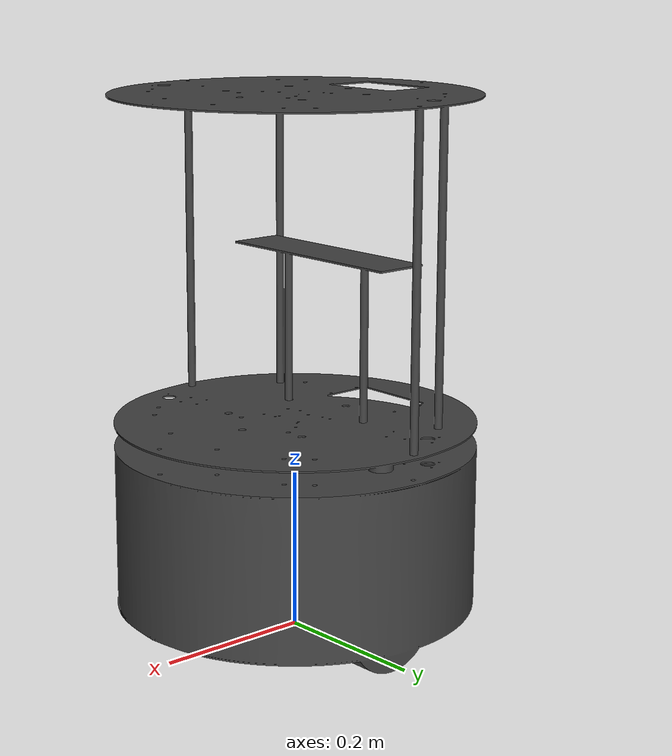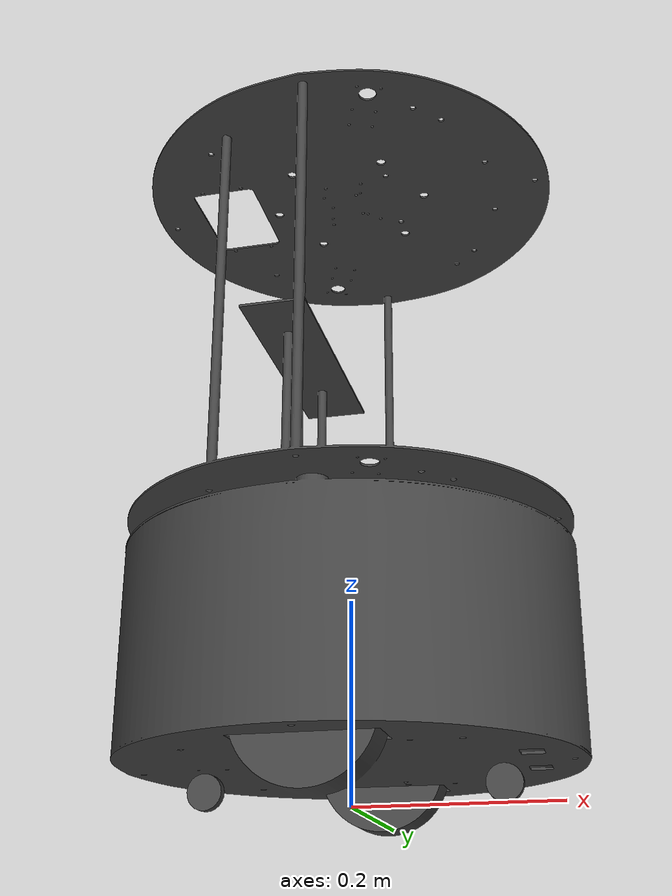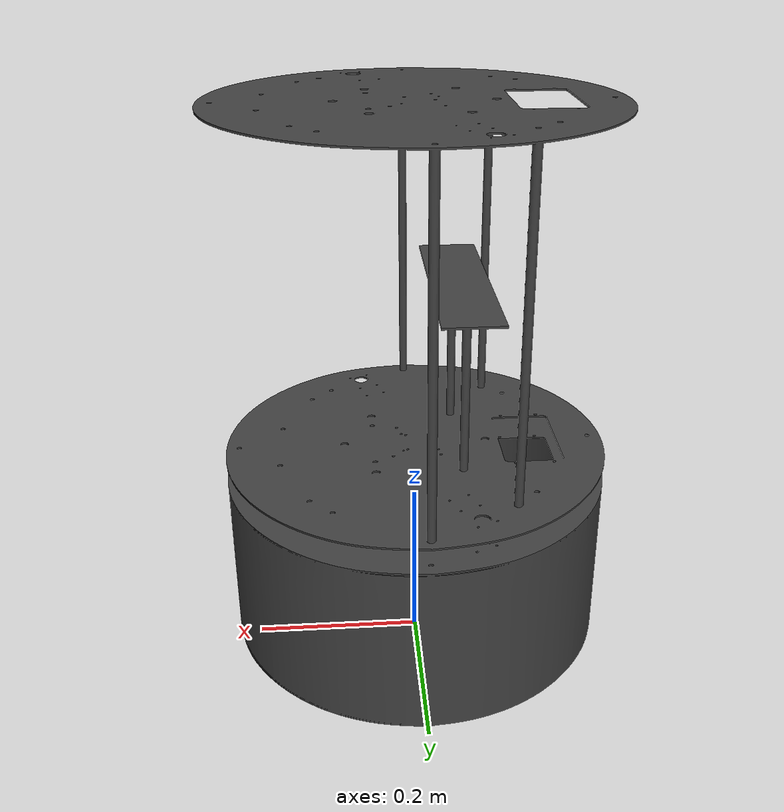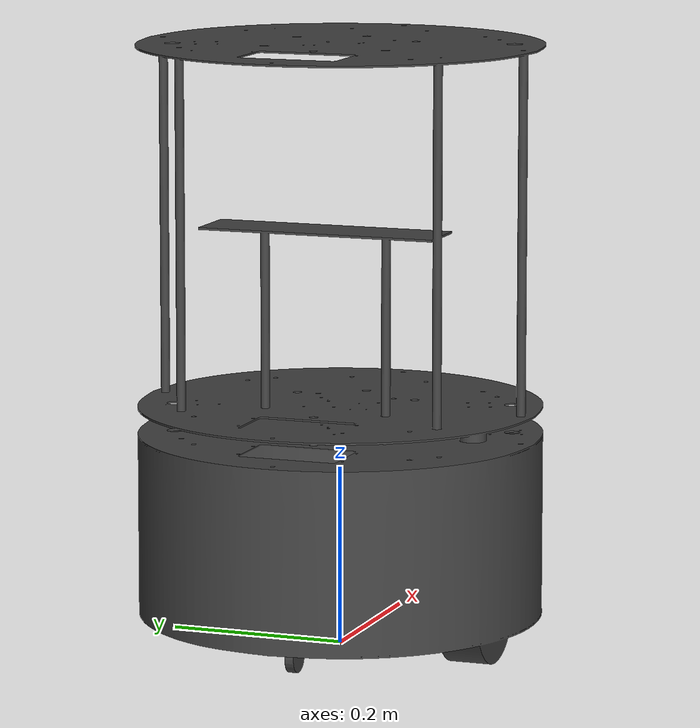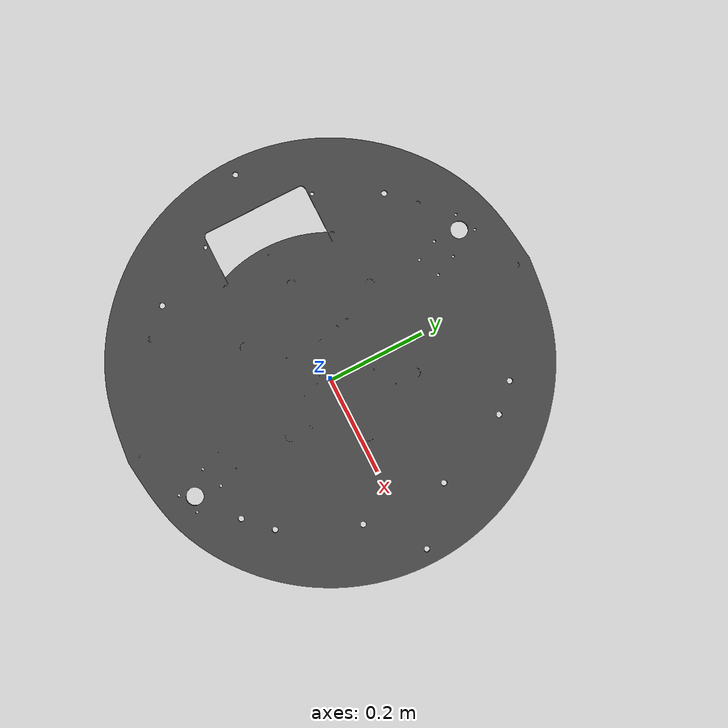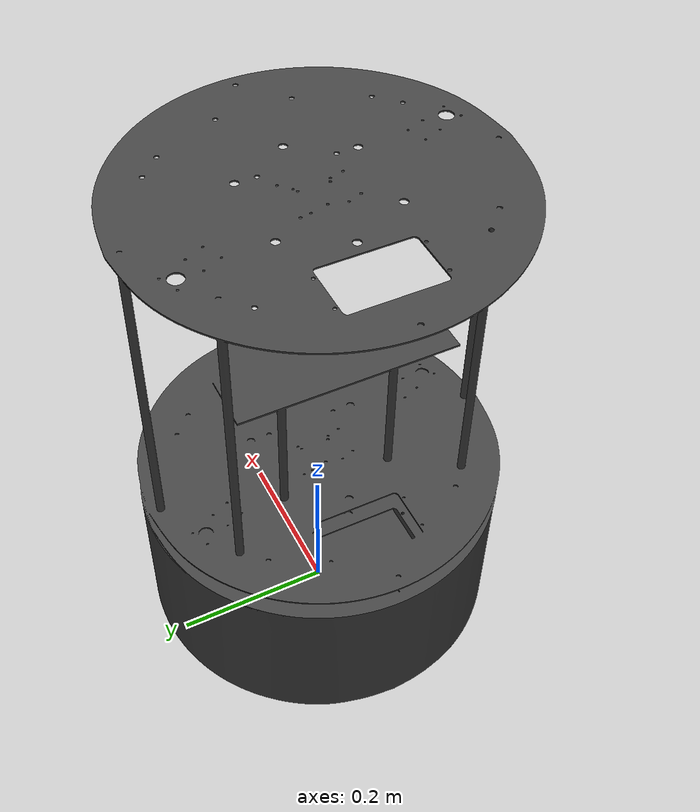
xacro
<?xml version="1.0"?>
<robot name="kobuki_xs_standalone"
       xmlns:sensor="http://playerstage.sourceforge.net/gazebo/xmlschema/#sensor"
       xmlns:controller="http://playerstage.sourceforge.net/gazebo/xmlschema/#controller"
       xmlns:interface="http://playerstage.sourceforge.net/gazebo/xmlschema/#interface"
       xmlns:xacro="http://ros.org/wiki/xacro">

  <!-- Defines the kobuki component tag. -->
  <xacro:include filename="$(find kobuki_x_description)/urdf/bases/kobuki_xs.urdf.xacro" />
  <kobuki_xs />
</robot>

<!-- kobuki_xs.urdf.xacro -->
<robot name="kobuki_xs" xmlns:xacro="http://ros.org/wiki/xacro">

    <xacro:include filename="$(find turtlebot_description)/urdf/common_properties.urdf.xacro"/>
    <xacro:macro name="kobuki_xs">
        <link name="base_footprint"/>
        <joint name="base_joint" type="fixed">
            <origin xyz="0 0 0.035" rpy="0 0 0" />
            <parent link="base_footprint"/>
            <child link="base_link" />
        </joint>
        <link name="base_link">
            <visual>
                <origin xyz="0.0 0.0 0.0" rpy="1.57079633 0 -1.57079633"/>
                <geometry>
                    <mesh filename="package://kobuki_x_description/meshes/bases/kobuki_xs.stl" scale="0.001 0.001 0.001"/>
                </geometry>
                <material name="light_black">
                    <color rgba="0.26171875 0.26171875 0.26171875 1.0"/>
                </material>
            </visual>
        </link>
        <joint name="front_caster_joint" type="fixed">
            <origin xyz="0.145 0 -0.0175" rpy="0 0 0"/>
            <parent link="base_link"/>
            <child link="front_caster_link"/>
        </joint>
        <link name="front_caster_link">
            <visual>
                <origin xyz="0 0 0" rpy="1.57079633 0 0"/>
                <geometry>
                    <cylinder length="0.01" radius="0.0175"/>
                </geometry>
                <material name="light_black">
                    <color rgba="0.26171875 0.26171875 0.26171875 1.0"/>
                </material>
            </visual>
        </link>
        <joint name="back_caster_joint" type="fixed">
            <origin xyz="-0.145 0 -0.0175" rpy="0 0 0"/>
            <parent link="base_link"/>
            <child link="back_caster_link"/>
        </joint>
        <link name="back_caster_link">
            <visual>
                <origin xyz="0 0 0" rpy="1.57079633 0 0"/>
                <geometry>
                    <cylinder length="0.01" radius="0.0175"/>
                </geometry>
                <material name="light_black">
                    <color rgba="0.26171875 0.26171875 0.26171875 1.0"/>
                </material>
            </visual>
        </link>
        <joint name="wheel_left_joint" type="continuous">
            <parent link="base_link"/>
            <child link="wheel_left_link"/>
            <origin xyz="0.00 ${0.23/2} 0.0250" rpy="${-M_PI/2} 0 0"/>
            <axis xyz="0 0 1"/>
        </joint>
        <link name="wheel_left_link"/>
        <joint name="wheel_right_joint" type="continuous">
            <parent link="base_link"/>
            <child link="wheel_right_link"/>
            <origin xyz="0.00 -${0.23/2} 0.0250" rpy="${-M_PI/2} 0 0"/>
            <axis xyz="0 0 1"/>
        </joint>
        <link name="wheel_right_link"/>

    </xacro:macro>
</robot>
